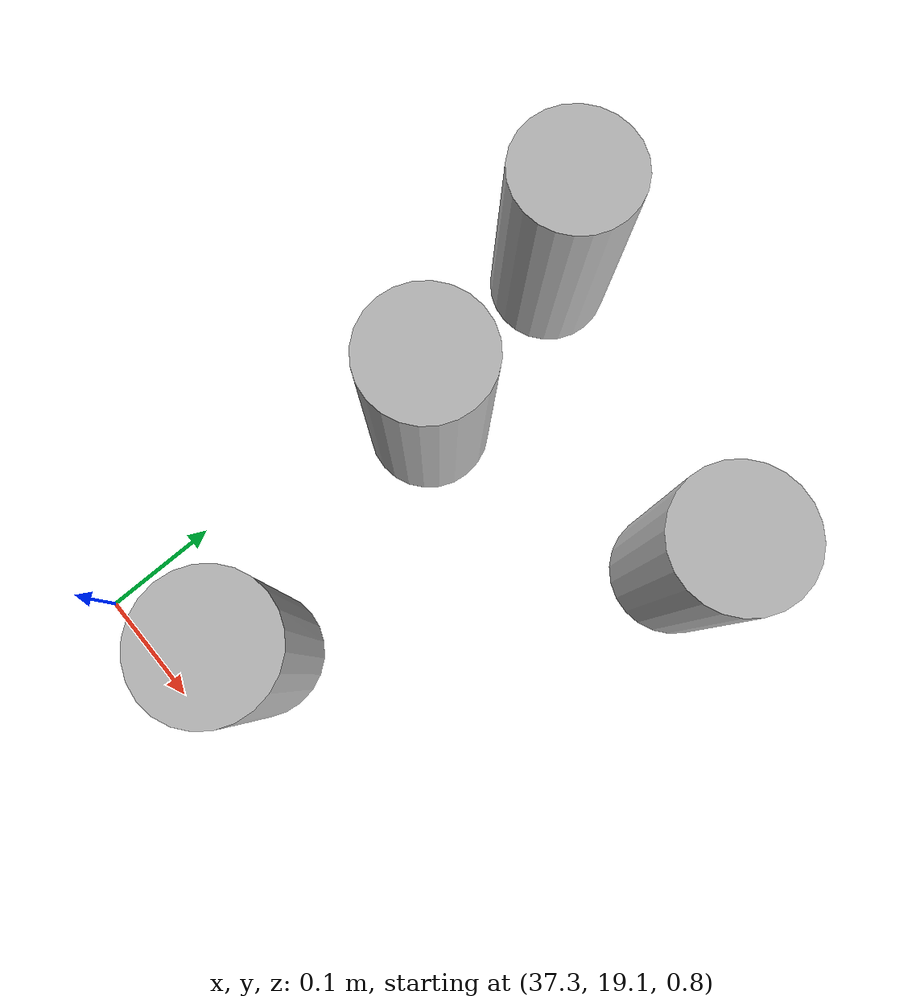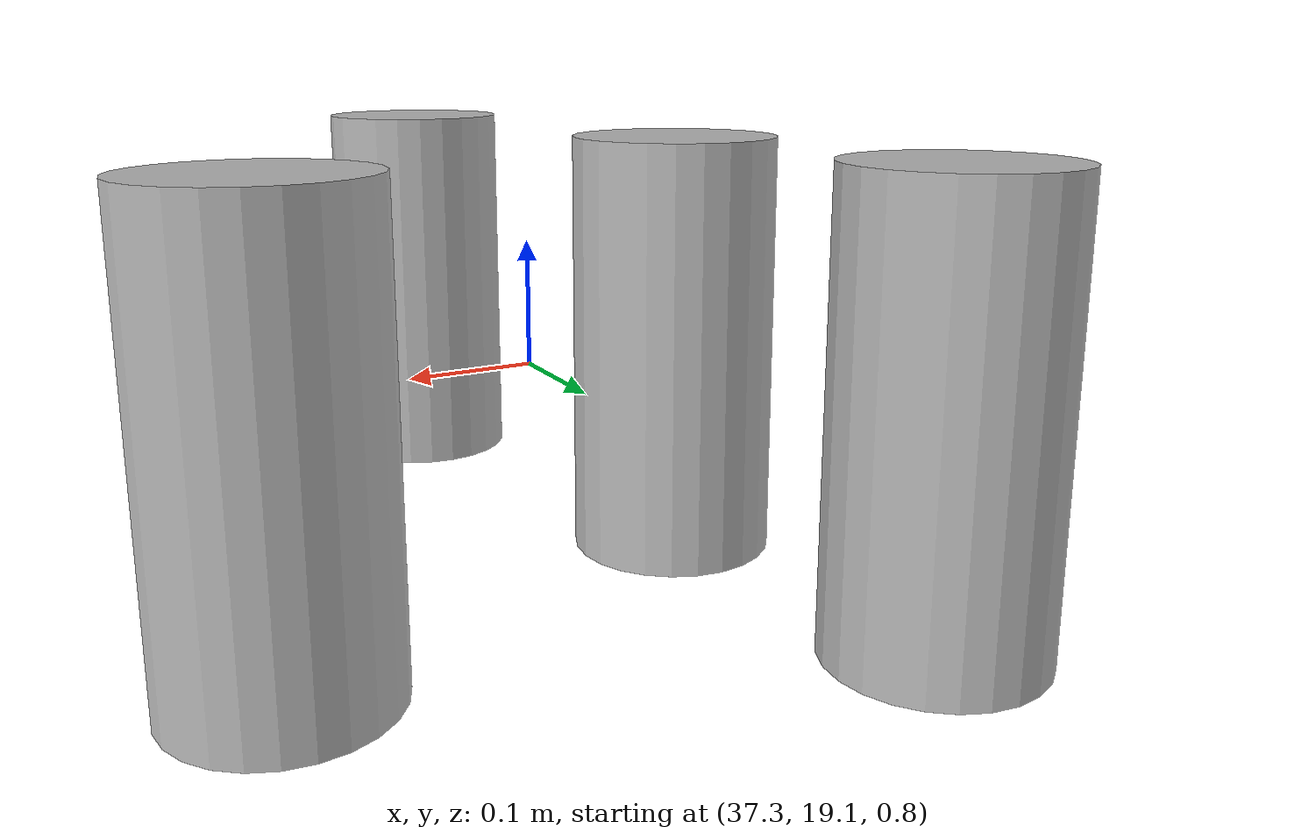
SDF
<sdf version="1.6">
 <world name="world">
  <model name="ground_plane">
   <static>1</static>
   <link name="link">
    <collision name="collision">
     <geometry><plane><normal>0 0 1</normal><size>100 100</size></plane></geometry>
     <surface><friction><ode><mu>100</mu><mu2>50</mu2></ode></friction></surface>
    </collision>
    <velocity_decay><linear>0</linear><angular>0</angular></velocity_decay>
   </link>
  </model>
  <physics name="default_physics" default="0" type="ode">
   <max_step_size>0.001</max_step_size>
   <real_time_factor>1</real_time_factor>
   <real_time_update_rate>1000</real_time_update_rate>
  </physics>
  <scene><ambient>0.4 0.4 0.4 1</ambient><background>0.7 0.7 0.7 1</background><shadows>1</shadows></scene>
  <gravity>0 0 -9.8</gravity>
  <magnetic_field>6e-06 2.3e-05 -4.2e-05</magnetic_field>
  <atmosphere type="adiabatic"/>
  <spherical_coordinates>
   <surface_model>EARTH_WGS84</surface_model>
   <latitude_deg>0</latitude_deg>
   <longitude_deg>0</longitude_deg>
   <elevation>0</elevation>
   <heading_deg>0</heading_deg>
  </spherical_coordinates>
  <light name="user_point_light_0" type="point">
   <pose>37.122 19.3882 1 0 -0 0</pose>
   <diffuse>0.5 0.5 0.5 1</diffuse>
   <specular>0.1 0.1 0.1 1</specular>
   <attenuation>
    <range>20</range>
    <constant>0.5</constant>
    <linear>0.01</linear>
    <quadratic>0.001</quadratic>
   </attenuation>
   <cast_shadows>0</cast_shadows>
   <direction>0 0 -1</direction>
  </light>
  <model name="beer">
   <link name="link">
    <pose>0 0 0.115 0 -0 0</pose>
    <inertial>
     <mass>0.39</mass>
     <inertia><ixx>0.00058</ixx><ixy>0</ixy><ixz>0</ixz><iyy>0.00058</iyy><iyz>0</iyz><izz>0.00019</izz></inertia>
    </inertial>
    <collision name="collision">
     <geometry><cylinder><radius>0.055</radius><length>0.23</length></cylinder></geometry>
    </collision>
    <visual name="visual">
     <geometry><cylinder><radius>0.055</radius><length>0.23</length></cylinder></geometry>
     <material>
      <script>
       <uri>model://beer/materials/scripts</uri>
       <uri>model://beer/materials/textures</uri>
       <name>Beer/Diffuse</name>
      </script>
     </material>
    </visual>
   </link>
   <pose>37.4134 19.1691 0.775004 1.5e-05 7.3e-05 -0.000131</pose>
  </model>
  <model name="beer_clone">
   <link name="link">
    <pose>0 0 0.115 0 -0 0</pose>
    <inertial>
     <mass>0.39</mass>
     <inertia><ixx>0.00058</ixx><ixy>0</ixy><ixz>0</ixz><iyy>0.00058</iyy><iyz>0</iyz><izz>0.00019</izz></inertia>
    </inertial>
    <collision name="collision">
     <geometry><cylinder><radius>0.055</radius><length>0.23</length></cylinder></geometry>
    </collision>
    <visual name="visual">
     <geometry><cylinder><radius>0.055</radius><length>0.23</length></cylinder></geometry>
     <material>
      <script>
       <uri>model://beer/materials/scripts</uri>
       <uri>model://beer/materials/textures</uri>
       <name>Beer/Diffuse</name>
      </script>
     </material>
    </visual>
   </link>
   <pose>37.353 19.4142 0.775001 1e-06 -2.7e-05 0.000413</pose>
  </model>
  <model name="beer_clone_0">
   <link name="link">
    <pose>0 0 0.115 0 -0 0</pose>
    <inertial>
     <mass>0.39</mass>
     <inertia><ixx>0.00058</ixx><ixy>0</ixy><ixz>0</ixz><iyy>0.00058</iyy><iyz>0</iyz><izz>0.00019</izz></inertia>
    </inertial>
    <collision name="collision">
     <geometry><cylinder><radius>0.055</radius><length>0.23</length></cylinder></geometry>
    </collision>
    <visual name="visual">
     <geometry><cylinder><radius>0.055</radius><length>0.23</length></cylinder></geometry>
     <material>
      <script>
       <uri>model://beer/materials/scripts</uri>
       <uri>model://beer/materials/textures</uri>
       <name>Beer/Diffuse</name>
      </script>
     </material>
    </visual>
   </link>
   <pose>37.317 19.5944 0.775001 1.5e-05 1.9e-05 0.00076</pose>
  </model>
  <model name="beer_clone_1">
   <link name="link">
    <pose>0 0 0.115 0 -0 0</pose>
    <inertial>
     <mass>0.39</mass>
     <inertia><ixx>0.00058</ixx><ixy>0</ixy><ixz>0</ixz><iyy>0.00058</iyy><iyz>0</iyz><izz>0.00019</izz></inertia>
    </inertial>
    <collision name="collision">
     <geometry><cylinder><radius>0.055</radius><length>0.23</length></cylinder></geometry>
    </collision>
    <visual name="visual">
     <geometry><cylinder><radius>0.055</radius><length>0.23</length></cylinder></geometry>
     <material>
      <script>
       <uri>model://beer/materials/scripts</uri>
       <uri>model://beer/materials/textures</uri>
       <name>Beer/Diffuse</name>
      </script>
     </material>
    </visual>
   </link>
   <pose>37.5955 19.4942 0.774999 1e-05 2.4e-05 0.001073</pose>
  </model>
 </world>
</sdf>
